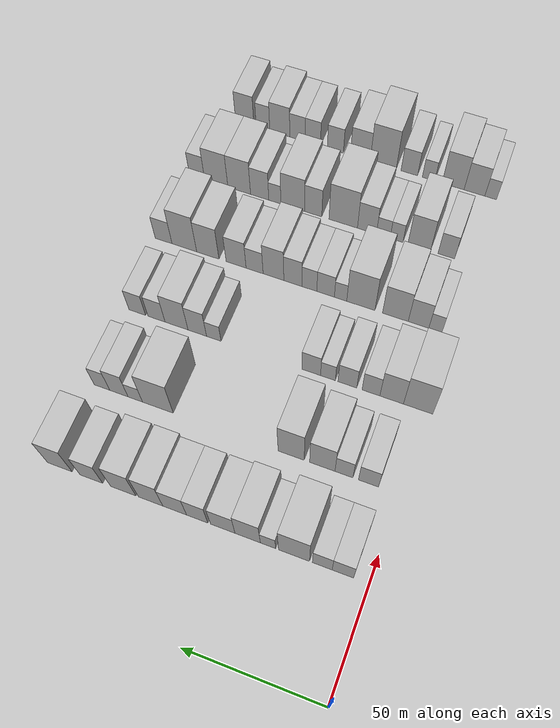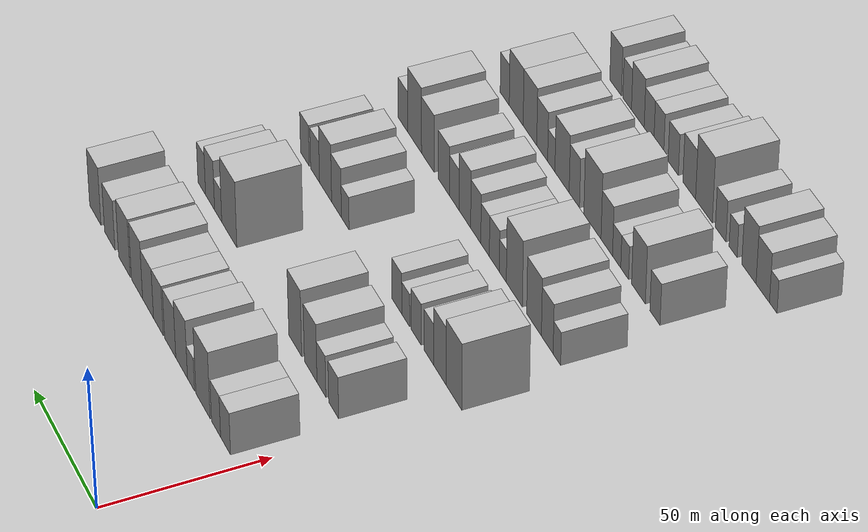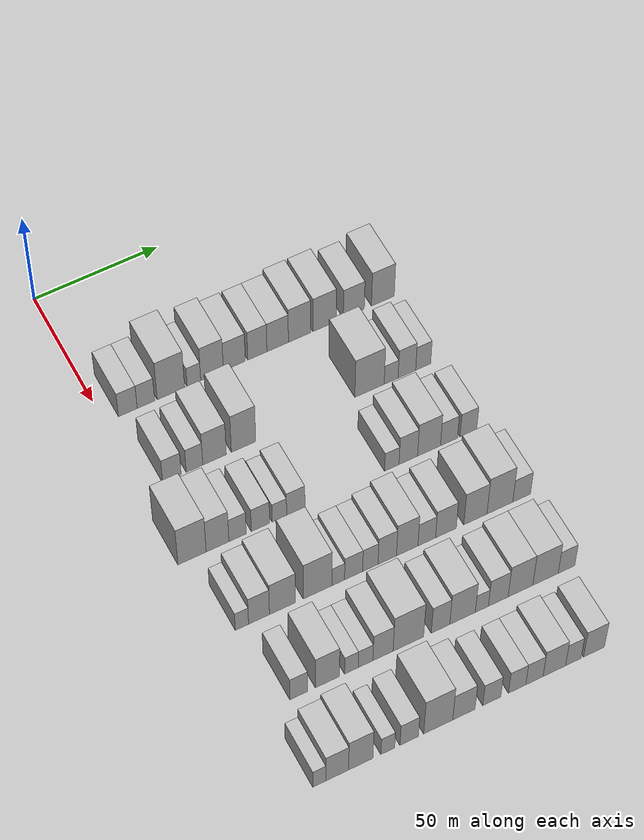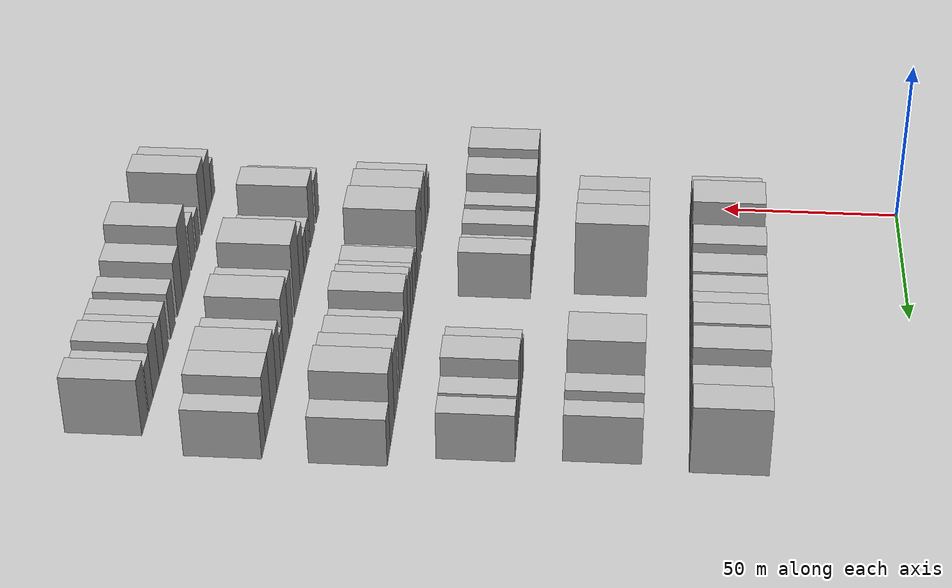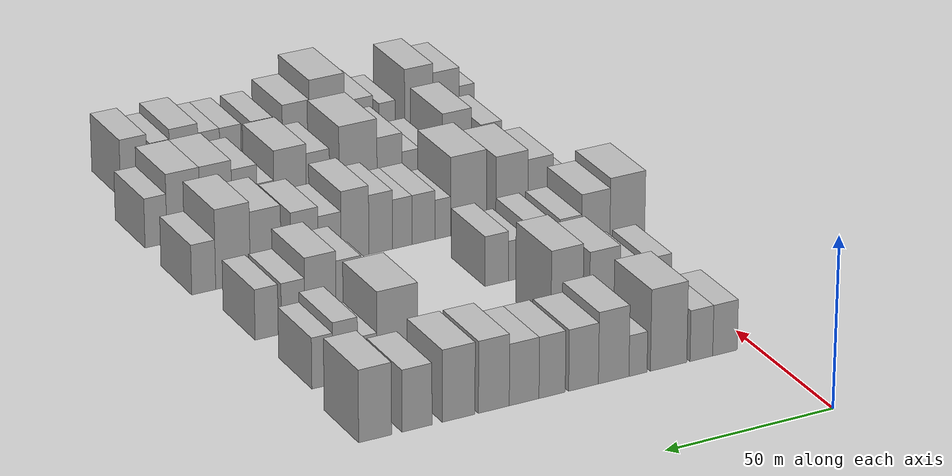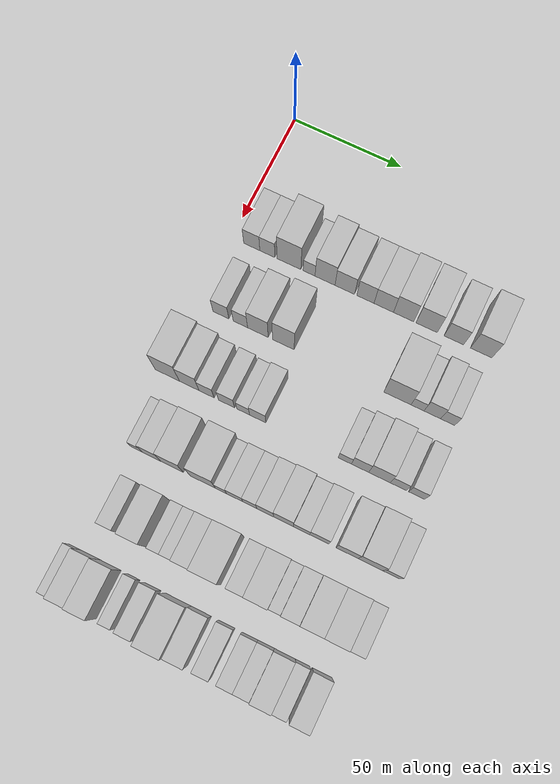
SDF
<sdf version="1.6">
 <world name="default">
  <model name="building_57">
   <static>1</static>
   <pose>50.0000 9.2083 0 0.000000 0.000000 0.000000</pose>
   <link name="link">
    <pose>0 0 7.50 0 0 0</pose>
    <collision name="collision"><geometry><box><size>20.0000 7.4848 15.0000</size></box></geometry></collision>
    <visual name="visual">
     <cast_shadows>0</cast_shadows>
     <geometry><box><size>20.0000 7.4848 15.0000</size></box></geometry>
     <material>
      <script>
       <uri>model://HANNAS_wall/materials/scripts</uri>
       <uri>model://HANNAS_wall/materials/textures</uri>
       <name>vrc/HANNAS_wall</name>
      </script>
     </material>
    </visual>
   </link>
  </model>
  <model name="building_58">
   <static>1</static>
   <pose>50.0000 16.4128 0 0.000000 0.000000 0.000000</pose>
   <link name="link">
    <pose>0 0 7.50 0 0 0</pose>
    <collision name="collision"><geometry><box><size>20.0000 6.9242 15.0000</size></box></geometry></collision>
    <visual name="visual">
     <cast_shadows>0</cast_shadows>
     <geometry><box><size>20.0000 6.9242 15.0000</size></box></geometry>
     <material>
      <script>
       <uri>model://HANNAS_wall/materials/scripts</uri>
       <uri>model://HANNAS_wall/materials/textures</uri>
       <name>vrc/HANNAS_wall</name>
      </script>
     </material>
    </visual>
   </link>
  </model>
  <model name="building_59">
   <static>1</static>
   <pose>50.0000 26.3806 0 0.000000 0.000000 0.000000</pose>
   <link name="link">
    <pose>0 0 12.00 0 0 0</pose>
    <collision name="collision"><geometry><box><size>20.0000 11.0114 24.0000</size></box></geometry></collision>
    <visual name="visual">
     <cast_shadows>0</cast_shadows>
     <geometry><box><size>20.0000 11.0114 24.0000</size></box></geometry>
     <material>
      <script>
       <uri>model://HANNAS_wall/materials/scripts</uri>
       <uri>model://HANNAS_wall/materials/textures</uri>
       <name>vrc/HANNAS_wall</name>
      </script>
     </material>
    </visual>
   </link>
  </model>
  <model name="building_60">
   <static>1</static>
   <pose>50.0000 35.6208 0 0.000000 0.000000 0.000000</pose>
   <link name="link">
    <pose>0 0 6.00 0 0 0</pose>
    <collision name="collision"><geometry><box><size>20.0000 5.4691 12.0000</size></box></geometry></collision>
    <visual name="visual">
     <cast_shadows>0</cast_shadows>
     <geometry><box><size>20.0000 5.4691 12.0000</size></box></geometry>
     <material>
      <script>
       <uri>model://HANNAS_wall/materials/scripts</uri>
       <uri>model://HANNAS_wall/materials/textures</uri>
       <name>vrc/HANNAS_wall</name>
      </script>
     </material>
    </visual>
   </link>
  </model>
  <model name="building_61">
   <static>1</static>
   <pose>50.0000 42.9283 0 0.000000 0.000000 0.000000</pose>
   <link name="link">
    <pose>0 0 10.50 0 0 0</pose>
    <collision name="collision"><geometry><box><size>20.0000 9.1458 21.0000</size></box></geometry></collision>
    <visual name="visual">
     <cast_shadows>0</cast_shadows>
     <geometry><box><size>20.0000 9.1458 21.0000</size></box></geometry>
     <material>
      <script>
       <uri>model://HANNAS_wall/materials/scripts</uri>
       <uri>model://HANNAS_wall/materials/textures</uri>
       <name>vrc/HANNAS_wall</name>
      </script>
     </material>
    </visual>
   </link>
  </model>
  <model name="building_62">
   <static>1</static>
   <pose>50.0000 51.9414 0 0.000000 0.000000 0.000000</pose>
   <link name="link">
    <pose>0 0 9.00 0 0 0</pose>
    <collision name="collision"><geometry><box><size>20.0000 8.8803 18.0000</size></box></geometry></collision>
    <visual name="visual">
     <cast_shadows>0</cast_shadows>
     <geometry><box><size>20.0000 8.8803 18.0000</size></box></geometry>
     <material>
      <script>
       <uri>model://HANNAS_wall/materials/scripts</uri>
       <uri>model://HANNAS_wall/materials/textures</uri>
       <name>vrc/HANNAS_wall</name>
      </script>
     </material>
    </visual>
   </link>
  </model>
  <model name="building_63">
   <static>1</static>
   <pose>50.0000 61.2831 0 0.000000 0.000000 0.000000</pose>
   <link name="link">
    <pose>0 0 9.00 0 0 0</pose>
    <collision name="collision"><geometry><box><size>20.0000 7.8031 18.0000</size></box></geometry></collision>
    <visual name="visual">
     <cast_shadows>0</cast_shadows>
     <geometry><box><size>20.0000 7.8031 18.0000</size></box></geometry>
     <material>
      <script>
       <uri>model://HANNAS_wall/materials/scripts</uri>
       <uri>model://HANNAS_wall/materials/textures</uri>
       <name>vrc/HANNAS_wall</name>
      </script>
     </material>
    </visual>
   </link>
  </model>
  <model name="building_64">
   <static>1</static>
   <pose>50.0000 69.5711 0 0.000000 0.000000 0.000000</pose>
   <link name="link">
    <pose>0 0 9.00 0 0 0</pose>
    <collision name="collision"><geometry><box><size>20.0000 8.7729 18.0000</size></box></geometry></collision>
    <visual name="visual">
     <cast_shadows>0</cast_shadows>
     <geometry><box><size>20.0000 8.7729 18.0000</size></box></geometry>
     <material>
      <script>
       <uri>model://HANNAS_wall/materials/scripts</uri>
       <uri>model://HANNAS_wall/materials/textures</uri>
       <name>vrc/HANNAS_wall</name>
      </script>
     </material>
    </visual>
   </link>
  </model>
  <model name="building_65">
   <static>1</static>
   <pose>50.0000 78.4867 0 0.000000 0.000000 0.000000</pose>
   <link name="link">
    <pose>0 0 10.50 0 0 0</pose>
    <collision name="collision"><geometry><box><size>20.0000 9.0582 21.0000</size></box></geometry></collision>
    <visual name="visual">
     <cast_shadows>0</cast_shadows>
     <geometry><box><size>20.0000 9.0582 21.0000</size></box></geometry>
     <material>
      <script>
       <uri>model://HANNAS_wall/materials/scripts</uri>
       <uri>model://HANNAS_wall/materials/textures</uri>
       <name>vrc/HANNAS_wall</name>
      </script>
     </material>
    </visual>
   </link>
  </model>
  <model name="building_66">
   <static>1</static>
   <pose>50.0000 88.7880 0 0.000000 0.000000 0.000000</pose>
   <link name="link">
    <pose>0 0 10.50 0 0 0</pose>
    <collision name="collision"><geometry><box><size>20.0000 9.5445 21.0000</size></box></geometry></collision>
    <visual name="visual">
     <cast_shadows>0</cast_shadows>
     <geometry><box><size>20.0000 9.5445 21.0000</size></box></geometry>
     <material>
      <script>
       <uri>model://HANNAS_wall/materials/scripts</uri>
       <uri>model://HANNAS_wall/materials/textures</uri>
       <name>vrc/HANNAS_wall</name>
      </script>
     </material>
    </visual>
   </link>
  </model>
  <model name="building_67">
   <static>1</static>
   <pose>50.0000 100.9029 0 0.000000 0.000000 0.000000</pose>
   <link name="link">
    <pose>0 0 9.00 0 0 0</pose>
    <collision name="collision"><geometry><box><size>20.0000 8.6853 18.0000</size></box></geometry></collision>
    <visual name="visual">
     <cast_shadows>0</cast_shadows>
     <geometry><box><size>20.0000 8.6853 18.0000</size></box></geometry>
     <material>
      <script>
       <uri>model://HANNAS_wall/materials/scripts</uri>
       <uri>model://HANNAS_wall/materials/textures</uri>
       <name>vrc/HANNAS_wall</name>
      </script>
     </material>
    </visual>
   </link>
  </model>
  <model name="building_68">
   <static>1</static>
   <pose>50.0000 112.9835 0 0.000000 0.000000 0.000000</pose>
   <link name="link">
    <pose>0 0 10.50 0 0 0</pose>
    <collision name="collision"><geometry><box><size>20.0000 9.4759 21.0000</size></box></geometry></collision>
    <visual name="visual">
     <cast_shadows>0</cast_shadows>
     <geometry><box><size>20.0000 9.4759 21.0000</size></box></geometry>
     <material>
      <script>
       <uri>model://HANNAS_wall/materials/scripts</uri>
       <uri>model://HANNAS_wall/materials/textures</uri>
       <name>vrc/HANNAS_wall</name>
      </script>
     </material>
    </visual>
   </link>
  </model>
  <model name="building_160">
   <static>1</static>
   <pose>82.0000 11.0810 0 0.000000 0.000000 0.000000</pose>
   <link name="link">
    <pose>0 0 7.50 0 0 0</pose>
    <collision name="collision"><geometry><box><size>20.0000 7.2846 15.0000</size></box></geometry></collision>
    <visual name="visual">
     <cast_shadows>0</cast_shadows>
     <geometry><box><size>20.0000 7.2846 15.0000</size></box></geometry>
     <material>
      <script>
       <uri>model://HANNAS_wall/materials/scripts</uri>
       <uri>model://HANNAS_wall/materials/textures</uri>
       <name>vrc/HANNAS_wall</name>
      </script>
     </material>
    </visual>
   </link>
  </model>
  <model name="building_161">
   <static>1</static>
   <pose>82.0000 19.9955 0 0.000000 0.000000 0.000000</pose>
   <link name="link">
    <pose>0 0 7.50 0 0 0</pose>
    <collision name="collision"><geometry><box><size>20.0000 6.5443 15.0000</size></box></geometry></collision>
    <visual name="visual">
     <cast_shadows>0</cast_shadows>
     <geometry><box><size>20.0000 6.5443 15.0000</size></box></geometry>
     <material>
      <script>
       <uri>model://HANNAS_wall/materials/scripts</uri>
       <uri>model://HANNAS_wall/materials/textures</uri>
       <name>vrc/HANNAS_wall</name>
      </script>
     </material>
    </visual>
   </link>
  </model>
  <model name="building_162">
   <static>1</static>
   <pose>82.0000 27.9349 0 0.000000 0.000000 0.000000</pose>
   <link name="link">
    <pose>0 0 10.50 0 0 0</pose>
    <collision name="collision"><geometry><box><size>20.0000 9.3345 21.0000</size></box></geometry></collision>
    <visual name="visual">
     <cast_shadows>0</cast_shadows>
     <geometry><box><size>20.0000 9.3345 21.0000</size></box></geometry>
     <material>
      <script>
       <uri>model://HANNAS_wall/materials/scripts</uri>
       <uri>model://HANNAS_wall/materials/textures</uri>
       <name>vrc/HANNAS_wall</name>
      </script>
     </material>
    </visual>
   </link>
  </model>
  <model name="building_163">
   <static>1</static>
   <pose>82.0000 39.4538 0 0.000000 0.000000 0.000000</pose>
   <link name="link">
    <pose>0 0 12.00 0 0 0</pose>
    <collision name="collision"><geometry><box><size>20.0000 9.7034 24.0000</size></box></geometry></collision>
    <visual name="visual">
     <cast_shadows>0</cast_shadows>
     <geometry><box><size>20.0000 9.7034 24.0000</size></box></geometry>
     <material>
      <script>
       <uri>model://HANNAS_wall/materials/scripts</uri>
       <uri>model://HANNAS_wall/materials/textures</uri>
       <name>vrc/HANNAS_wall</name>
      </script>
     </material>
    </visual>
   </link>
  </model>
  <model name="building_164">
   <static>1</static>
   <pose>82.0000 90.2785 0 0.000000 0.000000 0.000000</pose>
   <link name="link">
    <pose>0 0 12.00 0 0 0</pose>
    <collision name="collision"><geometry><box><size>20.0000 11.9820 24.0000</size></box></geometry></collision>
    <visual name="visual">
     <cast_shadows>0</cast_shadows>
     <geometry><box><size>20.0000 11.9820 24.0000</size></box></geometry>
     <material>
      <script>
       <uri>model://HANNAS_wall/materials/scripts</uri>
       <uri>model://HANNAS_wall/materials/textures</uri>
       <name>vrc/HANNAS_wall</name>
      </script>
     </material>
    </visual>
   </link>
  </model>
  <model name="building_165">
   <static>1</static>
   <pose>82.0000 99.1228 0 0.000000 0.000000 0.000000</pose>
   <link name="link">
    <pose>0 0 6.00 0 0 0</pose>
    <collision name="collision"><geometry><box><size>20.0000 5.7067 12.0000</size></box></geometry></collision>
    <visual name="visual">
     <cast_shadows>0</cast_shadows>
     <geometry><box><size>20.0000 5.7067 12.0000</size></box></geometry>
     <material>
      <script>
       <uri>model://HANNAS_wall/materials/scripts</uri>
       <uri>model://HANNAS_wall/materials/textures</uri>
       <name>vrc/HANNAS_wall</name>
      </script>
     </material>
    </visual>
   </link>
  </model>
  <model name="building_166">
   <static>1</static>
   <pose>82.0000 105.6028 0 0.000000 0.000000 0.000000</pose>
   <link name="link">
    <pose>0 0 9.00 0 0 0</pose>
    <collision name="collision"><geometry><box><size>20.0000 7.2533 18.0000</size></box></geometry></collision>
    <visual name="visual">
     <cast_shadows>0</cast_shadows>
     <geometry><box><size>20.0000 7.2533 18.0000</size></box></geometry>
     <material>
      <script>
       <uri>model://HANNAS_wall/materials/scripts</uri>
       <uri>model://HANNAS_wall/materials/textures</uri>
       <name>vrc/HANNAS_wall</name>
      </script>
     </material>
    </visual>
   </link>
  </model>
  <model name="building_167">
   <static>1</static>
   <pose>82.0000 112.3086 0 0.000000 0.000000 0.000000</pose>
   <link name="link">
    <pose>0 0 7.50 0 0 0</pose>
    <collision name="collision"><geometry><box><size>20.0000 6.1583 15.0000</size></box></geometry></collision>
    <visual name="visual">
     <cast_shadows>0</cast_shadows>
     <geometry><box><size>20.0000 6.1583 15.0000</size></box></geometry>
     <material>
      <script>
       <uri>model://HANNAS_wall/materials/scripts</uri>
       <uri>model://HANNAS_wall/materials/textures</uri>
       <name>vrc/HANNAS_wall</name>
      </script>
     </material>
    </visual>
   </link>
  </model>
  <model name="building_277">
   <static>1</static>
   <pose>114.0000 3.1664 0 0.000000 0.000000 0.000000</pose>
   <link name="link">
    <pose>0 0 12.00 0 0 0</pose>
    <collision name="collision"><geometry><box><size>20.0000 10.9654 24.0000</size></box></geometry></collision>
    <visual name="visual">
     <cast_shadows>0</cast_shadows>
     <geometry><box><size>20.0000 10.9654 24.0000</size></box></geometry>
     <material>
      <script>
       <uri>model://HANNAS_wall/materials/scripts</uri>
       <uri>model://HANNAS_wall/materials/textures</uri>
       <name>vrc/HANNAS_wall</name>
      </script>
     </material>
    </visual>
   </link>
  </model>
  <model name="building_278">
   <static>1</static>
   <pose>114.0000 13.0855 0 0.000000 0.000000 0.000000</pose>
   <link name="link">
    <pose>0 0 10.50 0 0 0</pose>
    <collision name="collision"><geometry><box><size>20.0000 8.8729 21.0000</size></box></geometry></collision>
    <visual name="visual">
     <cast_shadows>0</cast_shadows>
     <geometry><box><size>20.0000 8.8729 21.0000</size></box></geometry>
     <material>
      <script>
       <uri>model://HANNAS_wall/materials/scripts</uri>
       <uri>model://HANNAS_wall/materials/textures</uri>
       <name>vrc/HANNAS_wall</name>
      </script>
     </material>
    </visual>
   </link>
  </model>
  <model name="building_279">
   <static>1</static>
   <pose>114.0000 20.8991 0 0.000000 0.000000 0.000000</pose>
   <link name="link">
    <pose>0 0 7.50 0 0 0</pose>
    <collision name="collision"><geometry><box><size>20.0000 6.7544 15.0000</size></box></geometry></collision>
    <visual name="visual">
     <cast_shadows>0</cast_shadows>
     <geometry><box><size>20.0000 6.7544 15.0000</size></box></geometry>
     <material>
      <script>
       <uri>model://HANNAS_wall/materials/scripts</uri>
       <uri>model://HANNAS_wall/materials/textures</uri>
       <name>vrc/HANNAS_wall</name>
      </script>
     </material>
    </visual>
   </link>
  </model>
  <model name="building_280">
   <static>1</static>
   <pose>114.0000 29.8711 0 0.000000 0.000000 0.000000</pose>
   <link name="link">
    <pose>0 0 7.50 0 0 0</pose>
    <collision name="collision"><geometry><box><size>20.0000 7.1896 15.0000</size></box></geometry></collision>
    <visual name="visual">
     <cast_shadows>0</cast_shadows>
     <geometry><box><size>20.0000 7.1896 15.0000</size></box></geometry>
     <material>
      <script>
       <uri>model://HANNAS_wall/materials/scripts</uri>
       <uri>model://HANNAS_wall/materials/textures</uri>
       <name>vrc/HANNAS_wall</name>
      </script>
     </material>
    </visual>
   </link>
  </model>
  <model name="building_281">
   <static>1</static>
   <pose>114.0000 37.3006 0 0.000000 0.000000 0.000000</pose>
   <link name="link">
    <pose>0 0 6.00 0 0 0</pose>
    <collision name="collision"><geometry><box><size>20.0000 5.6692 12.0000</size></box></geometry></collision>
    <visual name="visual">
     <cast_shadows>0</cast_shadows>
     <geometry><box><size>20.0000 5.6692 12.0000</size></box></geometry>
     <material>
      <script>
       <uri>model://HANNAS_wall/materials/scripts</uri>
       <uri>model://HANNAS_wall/materials/textures</uri>
       <name>vrc/HANNAS_wall</name>
      </script>
     </material>
    </visual>
   </link>
  </model>
  <model name="building_282">
   <static>1</static>
   <pose>114.0000 43.7442 0 0.000000 0.000000 0.000000</pose>
   <link name="link">
    <pose>0 0 7.50 0 0 0</pose>
    <collision name="collision"><geometry><box><size>20.0000 7.2180 15.0000</size></box></geometry></collision>
    <visual name="visual">
     <cast_shadows>0</cast_shadows>
     <geometry><box><size>20.0000 7.2180 15.0000</size></box></geometry>
     <material>
      <script>
       <uri>model://HANNAS_wall/materials/scripts</uri>
       <uri>model://HANNAS_wall/materials/textures</uri>
       <name>vrc/HANNAS_wall</name>
      </script>
     </material>
    </visual>
   </link>
  </model>
  <model name="building_283">
   <static>1</static>
   <pose>114.0000 82.0651 0 0.000000 0.000000 0.000000</pose>
   <link name="link">
    <pose>0 0 6.00 0 0 0</pose>
    <collision name="collision"><geometry><box><size>20.0000 5.8079 12.0000</size></box></geometry></collision>
    <visual name="visual">
     <cast_shadows>0</cast_shadows>
     <geometry><box><size>20.0000 5.8079 12.0000</size></box></geometry>
     <material>
      <script>
       <uri>model://HANNAS_wall/materials/scripts</uri>
       <uri>model://HANNAS_wall/materials/textures</uri>
       <name>vrc/HANNAS_wall</name>
      </script>
     </material>
    </visual>
   </link>
  </model>
  <model name="building_284">
   <static>1</static>
   <pose>114.0000 88.7136 0 0.000000 0.000000 0.000000</pose>
   <link name="link">
    <pose>0 0 9.00 0 0 0</pose>
    <collision name="collision"><geometry><box><size>20.0000 7.4890 18.0000</size></box></geometry></collision>
    <visual name="visual">
     <cast_shadows>0</cast_shadows>
     <geometry><box><size>20.0000 7.4890 18.0000</size></box></geometry>
     <material>
      <script>
       <uri>model://HANNAS_wall/materials/scripts</uri>
       <uri>model://HANNAS_wall/materials/textures</uri>
       <name>vrc/HANNAS_wall</name>
      </script>
     </material>
    </visual>
   </link>
  </model>
  <model name="building_285">
   <static>1</static>
   <pose>114.0000 97.1096 0 0.000000 0.000000 0.000000</pose>
   <link name="link">
    <pose>0 0 10.50 0 0 0</pose>
    <collision name="collision"><geometry><box><size>20.0000 9.3031 21.0000</size></box></geometry></collision>
    <visual name="visual">
     <cast_shadows>0</cast_shadows>
     <geometry><box><size>20.0000 9.3031 21.0000</size></box></geometry>
     <material>
      <script>
       <uri>model://HANNAS_wall/materials/scripts</uri>
       <uri>model://HANNAS_wall/materials/textures</uri>
       <name>vrc/HANNAS_wall</name>
      </script>
     </material>
    </visual>
   </link>
  </model>
  <model name="building_286">
   <static>1</static>
   <pose>114.0000 105.2376 0 0.000000 0.000000 0.000000</pose>
   <link name="link">
    <pose>0 0 7.50 0 0 0</pose>
    <collision name="collision"><geometry><box><size>20.0000 6.9529 15.0000</size></box></geometry></collision>
    <visual name="visual">
     <cast_shadows>0</cast_shadows>
     <geometry><box><size>20.0000 6.9529 15.0000</size></box></geometry>
     <material>
      <script>
       <uri>model://HANNAS_wall/materials/scripts</uri>
       <uri>model://HANNAS_wall/materials/textures</uri>
       <name>vrc/HANNAS_wall</name>
      </script>
     </material>
    </visual>
   </link>
  </model>
  <model name="building_287">
   <static>1</static>
   <pose>114.0000 113.1294 0 0.000000 0.000000 0.000000</pose>
   <link name="link">
    <pose>0 0 7.50 0 0 0</pose>
    <collision name="collision"><geometry><box><size>20.0000 6.8306 15.0000</size></box></geometry></collision>
    <visual name="visual">
     <cast_shadows>0</cast_shadows>
     <geometry><box><size>20.0000 6.8306 15.0000</size></box></geometry>
     <material>
      <script>
       <uri>model://HANNAS_wall/materials/scripts</uri>
       <uri>model://HANNAS_wall/materials/textures</uri>
       <name>vrc/HANNAS_wall</name>
      </script>
     </material>
    </visual>
   </link>
  </model>
  <model name="building_398">
   <static>1</static>
   <pose>146.0000 6.3872 0 0.000000 0.000000 0.000000</pose>
   <link name="link">
    <pose>0 0 6.00 0 0 0</pose>
    <collision name="collision"><geometry><box><size>20.0000 5.1092 12.0000</size></box></geometry></collision>
    <visual name="visual">
     <cast_shadows>0</cast_shadows>
     <geometry><box><size>20.0000 5.1092 12.0000</size></box></geometry>
     <material>
      <script>
       <uri>model://HANNAS_wall/materials/scripts</uri>
       <uri>model://HANNAS_wall/materials/textures</uri>
       <name>vrc/HANNAS_wall</name>
      </script>
     </material>
    </visual>
   </link>
  </model>
  <model name="building_399">
   <static>1</static>
   <pose>146.0000 12.9421 0 0.000000 0.000000 0.000000</pose>
   <link name="link">
    <pose>0 0 9.00 0 0 0</pose>
    <collision name="collision"><geometry><box><size>20.0000 8.0006 18.0000</size></box></geometry></collision>
    <visual name="visual">
     <cast_shadows>0</cast_shadows>
     <geometry><box><size>20.0000 8.0006 18.0000</size></box></geometry>
     <material>
      <script>
       <uri>model://HANNAS_wall/materials/scripts</uri>
       <uri>model://HANNAS_wall/materials/textures</uri>
       <name>vrc/HANNAS_wall</name>
      </script>
     </material>
    </visual>
   </link>
  </model>
  <model name="building_400">
   <static>1</static>
   <pose>146.0000 21.9885 0 0.000000 0.000000 0.000000</pose>
   <link name="link">
    <pose>0 0 10.50 0 0 0</pose>
    <collision name="collision"><geometry><box><size>20.0000 10.0922 21.0000</size></box></geometry></collision>
    <visual name="visual">
     <cast_shadows>0</cast_shadows>
     <geometry><box><size>20.0000 10.0922 21.0000</size></box></geometry>
     <material>
      <script>
       <uri>model://HANNAS_wall/materials/scripts</uri>
       <uri>model://HANNAS_wall/materials/textures</uri>
       <name>vrc/HANNAS_wall</name>
      </script>
     </material>
    </visual>
   </link>
  </model>
  <model name="building_401">
   <static>1</static>
   <pose>146.0000 35.6291 0 0.000000 0.000000 0.000000</pose>
   <link name="link">
    <pose>0 0 12.00 0 0 0</pose>
    <collision name="collision"><geometry><box><size>20.0000 11.1890 24.0000</size></box></geometry></collision>
    <visual name="visual">
     <cast_shadows>0</cast_shadows>
     <geometry><box><size>20.0000 11.1890 24.0000</size></box></geometry>
     <material>
      <script>
       <uri>model://HANNAS_wall/materials/scripts</uri>
       <uri>model://HANNAS_wall/materials/textures</uri>
       <name>vrc/HANNAS_wall</name>
      </script>
     </material>
    </visual>
   </link>
  </model>
  <model name="building_402">
   <static>1</static>
   <pose>146.0000 43.6874 0 0.000000 0.000000 0.000000</pose>
   <link name="link">
    <pose>0 0 6.00 0 0 0</pose>
    <collision name="collision"><geometry><box><size>20.0000 4.9275 12.0000</size></box></geometry></collision>
    <visual name="visual">
     <cast_shadows>0</cast_shadows>
     <geometry><box><size>20.0000 4.9275 12.0000</size></box></geometry>
     <material>
      <script>
       <uri>model://HANNAS_wall/materials/scripts</uri>
       <uri>model://HANNAS_wall/materials/textures</uri>
       <name>vrc/HANNAS_wall</name>
      </script>
     </material>
    </visual>
   </link>
  </model>
  <model name="building_403">
   <static>1</static>
   <pose>146.0000 49.6857 0 0.000000 0.000000 0.000000</pose>
   <link name="link">
    <pose>0 0 7.50 0 0 0</pose>
    <collision name="collision"><geometry><box><size>20.0000 7.0691 15.0000</size></box></geometry></collision>
    <visual name="visual">
     <cast_shadows>0</cast_shadows>
     <geometry><box><size>20.0000 7.0691 15.0000</size></box></geometry>
     <material>
      <script>
       <uri>model://HANNAS_wall/materials/scripts</uri>
       <uri>model://HANNAS_wall/materials/textures</uri>
       <name>vrc/HANNAS_wall</name>
      </script>
     </material>
    </visual>
   </link>
  </model>
  <model name="building_404">
   <static>1</static>
   <pose>146.0000 56.2538 0 0.000000 0.000000 0.000000</pose>
   <link name="link">
    <pose>0 0 7.50 0 0 0</pose>
    <collision name="collision"><geometry><box><size>20.0000 6.0670 15.0000</size></box></geometry></collision>
    <visual name="visual">
     <cast_shadows>0</cast_shadows>
     <geometry><box><size>20.0000 6.0670 15.0000</size></box></geometry>
     <material>
      <script>
       <uri>model://HANNAS_wall/materials/scripts</uri>
       <uri>model://HANNAS_wall/materials/textures</uri>
       <name>vrc/HANNAS_wall</name>
      </script>
     </material>
    </visual>
   </link>
  </model>
  <model name="building_405">
   <static>1</static>
   <pose>146.0000 62.9308 0 0.000000 0.000000 0.000000</pose>
   <link name="link">
    <pose>0 0 9.00 0 0 0</pose>
    <collision name="collision"><geometry><box><size>20.0000 7.2870 18.0000</size></box></geometry></collision>
    <visual name="visual">
     <cast_shadows>0</cast_shadows>
     <geometry><box><size>20.0000 7.2870 18.0000</size></box></geometry>
     <material>
      <script>
       <uri>model://HANNAS_wall/materials/scripts</uri>
       <uri>model://HANNAS_wall/materials/textures</uri>
       <name>vrc/HANNAS_wall</name>
      </script>
     </material>
    </visual>
   </link>
  </model>
  <model name="building_406">
   <static>1</static>
   <pose>146.0000 70.8221 0 0.000000 0.000000 0.000000</pose>
   <link name="link">
    <pose>0 0 10.50 0 0 0</pose>
    <collision name="collision"><geometry><box><size>20.0000 8.4955 21.0000</size></box></geometry></collision>
    <visual name="visual">
     <cast_shadows>0</cast_shadows>
     <geometry><box><size>20.0000 8.4955 21.0000</size></box></geometry>
     <material>
      <script>
       <uri>model://HANNAS_wall/materials/scripts</uri>
       <uri>model://HANNAS_wall/materials/textures</uri>
       <name>vrc/HANNAS_wall</name>
      </script>
     </material>
    </visual>
   </link>
  </model>
  <model name="building_407">
   <static>1</static>
   <pose>146.0000 78.5710 0 0.000000 0.000000 0.000000</pose>
   <link name="link">
    <pose>0 0 7.50 0 0 0</pose>
    <collision name="collision"><geometry><box><size>20.0000 7.0023 15.0000</size></box></geometry></collision>
    <visual name="visual">
     <cast_shadows>0</cast_shadows>
     <geometry><box><size>20.0000 7.0023 15.0000</size></box></geometry>
     <material>
      <script>
       <uri>model://HANNAS_wall/materials/scripts</uri>
       <uri>model://HANNAS_wall/materials/textures</uri>
       <name>vrc/HANNAS_wall</name>
      </script>
     </material>
    </visual>
   </link>
  </model>
  <model name="building_408">
   <static>1</static>
   <pose>146.0000 86.2087 0 0.000000 0.000000 0.000000</pose>
   <link name="link">
    <pose>0 0 9.00 0 0 0</pose>
    <collision name="collision"><geometry><box><size>20.0000 8.2731 18.0000</size></box></geometry></collision>
    <visual name="visual">
     <cast_shadows>0</cast_shadows>
     <geometry><box><size>20.0000 8.2731 18.0000</size></box></geometry>
     <material>
      <script>
       <uri>model://HANNAS_wall/materials/scripts</uri>
       <uri>model://HANNAS_wall/materials/textures</uri>
       <name>vrc/HANNAS_wall</name>
      </script>
     </material>
    </visual>
   </link>
  </model>
  <model name="building_409">
   <static>1</static>
   <pose>146.0000 98.0142 0 0.000000 0.000000 0.000000</pose>
   <link name="link">
    <pose>0 0 10.50 0 0 0</pose>
    <collision name="collision"><geometry><box><size>20.0000 9.3378 21.0000</size></box></geometry></collision>
    <visual name="visual">
     <cast_shadows>0</cast_shadows>
     <geometry><box><size>20.0000 9.3378 21.0000</size></box></geometry>
     <material>
      <script>
       <uri>model://HANNAS_wall/materials/scripts</uri>
       <uri>model://HANNAS_wall/materials/textures</uri>
       <name>vrc/HANNAS_wall</name>
      </script>
     </material>
    </visual>
   </link>
  </model>
  <model name="building_410">
   <static>1</static>
   <pose>146.0000 107.8942 0 0.000000 0.000000 0.000000</pose>
   <link name="link">
    <pose>0 0 12.00 0 0 0</pose>
    <collision name="collision"><geometry><box><size>20.0000 10.4223 24.0000</size></box></geometry></collision>
    <visual name="visual">
     <cast_shadows>0</cast_shadows>
     <geometry><box><size>20.0000 10.4223 24.0000</size></box></geometry>
     <material>
      <script>
       <uri>model://HANNAS_wall/materials/scripts</uri>
       <uri>model://HANNAS_wall/materials/textures</uri>
       <name>vrc/HANNAS_wall</name>
      </script>
     </material>
    </visual>
   </link>
  </model>
  <model name="building_411">
   <static>1</static>
   <pose>146.0000 116.6894 0 0.000000 0.000000 0.000000</pose>
   <link name="link">
    <pose>0 0 7.50 0 0 0</pose>
    <collision name="collision"><geometry><box><size>20.0000 7.1681 15.0000</size></box></geometry></collision>
    <visual name="visual">
     <cast_shadows>0</cast_shadows>
     <geometry><box><size>20.0000 7.1681 15.0000</size></box></geometry>
     <material>
      <script>
       <uri>model://HANNAS_wall/materials/scripts</uri>
       <uri>model://HANNAS_wall/materials/textures</uri>
       <name>vrc/HANNAS_wall</name>
      </script>
     </material>
    </visual>
   </link>
  </model>
  <model name="building_526">
   <static>1</static>
   <pose>178.0000 11.6467 0 0.000000 0.000000 0.000000</pose>
   <link name="link">
    <pose>0 0 7.50 0 0 0</pose>
    <collision name="collision"><geometry><box><size>20.0000 6.6956 15.0000</size></box></geometry></collision>
    <visual name="visual">
     <cast_shadows>0</cast_shadows>
     <geometry><box><size>20.0000 6.6956 15.0000</size></box></geometry>
     <material>
      <script>
       <uri>model://HANNAS_wall/materials/scripts</uri>
       <uri>model://HANNAS_wall/materials/textures</uri>
       <name>vrc/HANNAS_wall</name>
      </script>
     </material>
    </visual>
   </link>
  </model>
  <model name="building_527">
   <static>1</static>
   <pose>178.0000 22.5934 0 0.000000 0.000000 0.000000</pose>
   <link name="link">
    <pose>0 0 10.50 0 0 0</pose>
    <collision name="collision"><geometry><box><size>20.0000 9.1979 21.0000</size></box></geometry></collision>
    <visual name="visual">
     <cast_shadows>0</cast_shadows>
     <geometry><box><size>20.0000 9.1979 21.0000</size></box></geometry>
     <material>
      <script>
       <uri>model://HANNAS_wall/materials/scripts</uri>
       <uri>model://HANNAS_wall/materials/textures</uri>
       <name>vrc/HANNAS_wall</name>
      </script>
     </material>
    </visual>
   </link>
  </model>
  <model name="building_528">
   <static>1</static>
   <pose>178.0000 31.8257 0 0.000000 0.000000 0.000000</pose>
   <link name="link">
    <pose>0 0 6.00 0 0 0</pose>
    <collision name="collision"><geometry><box><size>20.0000 5.2667 12.0000</size></box></geometry></collision>
    <visual name="visual">
     <cast_shadows>0</cast_shadows>
     <geometry><box><size>20.0000 5.2667 12.0000</size></box></geometry>
     <material>
      <script>
       <uri>model://HANNAS_wall/materials/scripts</uri>
       <uri>model://HANNAS_wall/materials/textures</uri>
       <name>vrc/HANNAS_wall</name>
      </script>
     </material>
    </visual>
   </link>
  </model>
  <model name="building_529">
   <static>1</static>
   <pose>178.0000 37.2632 0 0.000000 0.000000 0.000000</pose>
   <link name="link">
    <pose>0 0 6.00 0 0 0</pose>
    <collision name="collision"><geometry><box><size>20.0000 5.6083 12.0000</size></box></geometry></collision>
    <visual name="visual">
     <cast_shadows>0</cast_shadows>
     <geometry><box><size>20.0000 5.6083 12.0000</size></box></geometry>
     <material>
      <script>
       <uri>model://HANNAS_wall/materials/scripts</uri>
       <uri>model://HANNAS_wall/materials/textures</uri>
       <name>vrc/HANNAS_wall</name>
      </script>
     </material>
    </visual>
   </link>
  </model>
  <model name="building_530">
   <static>1</static>
   <pose>178.0000 43.9824 0 0.000000 0.000000 0.000000</pose>
   <link name="link">
    <pose>0 0 9.00 0 0 0</pose>
    <collision name="collision"><geometry><box><size>20.0000 7.8303 18.0000</size></box></geometry></collision>
    <visual name="visual">
     <cast_shadows>0</cast_shadows>
     <geometry><box><size>20.0000 7.8303 18.0000</size></box></geometry>
     <material>
      <script>
       <uri>model://HANNAS_wall/materials/scripts</uri>
       <uri>model://HANNAS_wall/materials/textures</uri>
       <name>vrc/HANNAS_wall</name>
      </script>
     </material>
    </visual>
   </link>
  </model>
  <model name="building_531">
   <static>1</static>
   <pose>178.0000 53.8326 0 0.000000 0.000000 0.000000</pose>
   <link name="link">
    <pose>0 0 12.00 0 0 0</pose>
    <collision name="collision"><geometry><box><size>20.0000 11.8701 24.0000</size></box></geometry></collision>
    <visual name="visual">
     <cast_shadows>0</cast_shadows>
     <geometry><box><size>20.0000 11.8701 24.0000</size></box></geometry>
     <material>
      <script>
       <uri>model://HANNAS_wall/materials/scripts</uri>
       <uri>model://HANNAS_wall/materials/textures</uri>
       <name>vrc/HANNAS_wall</name>
      </script>
     </material>
    </visual>
   </link>
  </model>
  <model name="building_532">
   <static>1</static>
   <pose>178.0000 66.3855 0 0.000000 0.000000 0.000000</pose>
   <link name="link">
    <pose>0 0 9.00 0 0 0</pose>
    <collision name="collision"><geometry><box><size>20.0000 7.2358 18.0000</size></box></geometry></collision>
    <visual name="visual">
     <cast_shadows>0</cast_shadows>
     <geometry><box><size>20.0000 7.2358 18.0000</size></box></geometry>
     <material>
      <script>
       <uri>model://HANNAS_wall/materials/scripts</uri>
       <uri>model://HANNAS_wall/materials/textures</uri>
       <name>vrc/HANNAS_wall</name>
      </script>
     </material>
    </visual>
   </link>
  </model>
  <model name="building_533">
   <static>1</static>
   <pose>178.0000 75.0236 0 0.000000 0.000000 0.000000</pose>
   <link name="link">
    <pose>0 0 10.50 0 0 0</pose>
    <collision name="collision"><geometry><box><size>20.0000 10.0404 21.0000</size></box></geometry></collision>
    <visual name="visual">
     <cast_shadows>0</cast_shadows>
     <geometry><box><size>20.0000 10.0404 21.0000</size></box></geometry>
     <material>
      <script>
       <uri>model://HANNAS_wall/materials/scripts</uri>
       <uri>model://HANNAS_wall/materials/textures</uri>
       <name>vrc/HANNAS_wall</name>
      </script>
     </material>
    </visual>
   </link>
  </model>
  <model name="building_534">
   <static>1</static>
   <pose>178.0000 82.6273 0 0.000000 0.000000 0.000000</pose>
   <link name="link">
    <pose>0 0 6.00 0 0 0</pose>
    <collision name="collision"><geometry><box><size>20.0000 5.1669 12.0000</size></box></geometry></collision>
    <visual name="visual">
     <cast_shadows>0</cast_shadows>
     <geometry><box><size>20.0000 5.1669 12.0000</size></box></geometry>
     <material>
      <script>
       <uri>model://HANNAS_wall/materials/scripts</uri>
       <uri>model://HANNAS_wall/materials/textures</uri>
       <name>vrc/HANNAS_wall</name>
      </script>
     </material>
    </visual>
   </link>
  </model>
  <model name="building_535">
   <static>1</static>
   <pose>178.0000 89.1098 0 0.000000 0.000000 0.000000</pose>
   <link name="link">
    <pose>0 0 9.00 0 0 0</pose>
    <collision name="collision"><geometry><box><size>20.0000 7.7983 18.0000</size></box></geometry></collision>
    <visual name="visual">
     <cast_shadows>0</cast_shadows>
     <geometry><box><size>20.0000 7.7983 18.0000</size></box></geometry>
     <material>
      <script>
       <uri>model://HANNAS_wall/materials/scripts</uri>
       <uri>model://HANNAS_wall/materials/textures</uri>
       <name>vrc/HANNAS_wall</name>
      </script>
     </material>
    </visual>
   </link>
  </model>
  <model name="building_536">
   <static>1</static>
   <pose>178.0000 97.9074 0 0.000000 0.000000 0.000000</pose>
   <link name="link">
    <pose>0 0 10.50 0 0 0</pose>
    <collision name="collision"><geometry><box><size>20.0000 9.7968 21.0000</size></box></geometry></collision>
    <visual name="visual">
     <cast_shadows>0</cast_shadows>
     <geometry><box><size>20.0000 9.7968 21.0000</size></box></geometry>
     <material>
      <script>
       <uri>model://HANNAS_wall/materials/scripts</uri>
       <uri>model://HANNAS_wall/materials/textures</uri>
       <name>vrc/HANNAS_wall</name>
      </script>
     </material>
    </visual>
   </link>
  </model>
  <model name="building_537">
   <static>1</static>
   <pose>178.0000 107.8703 0 0.000000 0.000000 0.000000</pose>
   <link name="link">
    <pose>0 0 10.50 0 0 0</pose>
    <collision name="collision"><geometry><box><size>20.0000 10.1290 21.0000</size></box></geometry></collision>
    <visual name="visual">
     <cast_shadows>0</cast_shadows>
     <geometry><box><size>20.0000 10.1290 21.0000</size></box></geometry>
     <material>
      <script>
       <uri>model://HANNAS_wall/materials/scripts</uri>
       <uri>model://HANNAS_wall/materials/textures</uri>
       <name>vrc/HANNAS_wall</name>
      </script>
     </material>
    </visual>
   </link>
  </model>
  <model name="building_538">
   <static>1</static>
   <pose>178.0000 116.2577 0 0.000000 0.000000 0.000000</pose>
   <link name="link">
    <pose>0 0 7.50 0 0 0</pose>
    <collision name="collision"><geometry><box><size>20.0000 6.6459 15.0000</size></box></geometry></collision>
    <visual name="visual">
     <cast_shadows>0</cast_shadows>
     <geometry><box><size>20.0000 6.6459 15.0000</size></box></geometry>
     <material>
      <script>
       <uri>model://HANNAS_wall/materials/scripts</uri>
       <uri>model://HANNAS_wall/materials/textures</uri>
       <name>vrc/HANNAS_wall</name>
      </script>
     </material>
    </visual>
   </link>
  </model>
  <model name="building_645">
   <static>1</static>
   <pose>210.0000 2.7098 0 0.000000 0.000000 0.000000</pose>
   <link name="link">
    <pose>0 0 6.00 0 0 0</pose>
    <collision name="collision"><geometry><box><size>20.0000 4.8351 12.0000</size></box></geometry></collision>
    <visual name="visual">
     <cast_shadows>0</cast_shadows>
     <geometry><box><size>20.0000 4.8351 12.0000</size></box></geometry>
     <material>
      <script>
       <uri>model://HANNAS_wall/materials/scripts</uri>
       <uri>model://HANNAS_wall/materials/textures</uri>
       <name>vrc/HANNAS_wall</name>
      </script>
     </material>
    </visual>
   </link>
  </model>
  <model name="building_646">
   <static>1</static>
   <pose>210.0000 9.4089 0 0.000000 0.000000 0.000000</pose>
   <link name="link">
    <pose>0 0 9.00 0 0 0</pose>
    <collision name="collision"><geometry><box><size>20.0000 8.5632 18.0000</size></box></geometry></collision>
    <visual name="visual">
     <cast_shadows>0</cast_shadows>
     <geometry><box><size>20.0000 8.5632 18.0000</size></box></geometry>
     <material>
      <script>
       <uri>model://HANNAS_wall/materials/scripts</uri>
       <uri>model://HANNAS_wall/materials/textures</uri>
       <name>vrc/HANNAS_wall</name>
      </script>
     </material>
    </visual>
   </link>
  </model>
  <model name="building_647">
   <static>1</static>
   <pose>210.0000 18.3019 0 0.000000 0.000000 0.000000</pose>
   <link name="link">
    <pose>0 0 10.50 0 0 0</pose>
    <collision name="collision"><geometry><box><size>20.0000 9.2228 21.0000</size></box></geometry></collision>
    <visual name="visual">
     <cast_shadows>0</cast_shadows>
     <geometry><box><size>20.0000 9.2228 21.0000</size></box></geometry>
     <material>
      <script>
       <uri>model://HANNAS_wall/materials/scripts</uri>
       <uri>model://HANNAS_wall/materials/textures</uri>
       <name>vrc/HANNAS_wall</name>
      </script>
     </material>
    </visual>
   </link>
  </model>
  <model name="building_648">
   <static>1</static>
   <pose>210.0000 28.5500 0 0.000000 0.000000 0.000000</pose>
   <link name="link">
    <pose>0 0 6.00 0 0 0</pose>
    <collision name="collision"><geometry><box><size>20.0000 5.2734 12.0000</size></box></geometry></collision>
    <visual name="visual">
     <cast_shadows>0</cast_shadows>
     <geometry><box><size>20.0000 5.2734 12.0000</size></box></geometry>
     <material>
      <script>
       <uri>model://HANNAS_wall/materials/scripts</uri>
       <uri>model://HANNAS_wall/materials/textures</uri>
       <name>vrc/HANNAS_wall</name>
      </script>
     </material>
    </visual>
   </link>
  </model>
  <model name="building_649">
   <static>1</static>
   <pose>210.0000 36.6963 0 0.000000 0.000000 0.000000</pose>
   <link name="link">
    <pose>0 0 7.50 0 0 0</pose>
    <collision name="collision"><geometry><box><size>20.0000 7.0192 15.0000</size></box></geometry></collision>
    <visual name="visual">
     <cast_shadows>0</cast_shadows>
     <geometry><box><size>20.0000 7.0192 15.0000</size></box></geometry>
     <material>
      <script>
       <uri>model://HANNAS_wall/materials/scripts</uri>
       <uri>model://HANNAS_wall/materials/textures</uri>
       <name>vrc/HANNAS_wall</name>
      </script>
     </material>
    </visual>
   </link>
  </model>
  <model name="building_650">
   <static>1</static>
   <pose>210.0000 47.7846 0 0.000000 0.000000 0.000000</pose>
   <link name="link">
    <pose>0 0 12.00 0 0 0</pose>
    <collision name="collision"><geometry><box><size>20.0000 11.1574 24.0000</size></box></geometry></collision>
    <visual name="visual">
     <cast_shadows>0</cast_shadows>
     <geometry><box><size>20.0000 11.1574 24.0000</size></box></geometry>
     <material>
      <script>
       <uri>model://HANNAS_wall/materials/scripts</uri>
       <uri>model://HANNAS_wall/materials/textures</uri>
       <name>vrc/HANNAS_wall</name>
      </script>
     </material>
    </visual>
   </link>
  </model>
  <model name="building_651">
   <static>1</static>
   <pose>210.0000 57.6452 0 0.000000 0.000000 0.000000</pose>
   <link name="link">
    <pose>0 0 9.00 0 0 0</pose>
    <collision name="collision"><geometry><box><size>20.0000 8.5638 18.0000</size></box></geometry></collision>
    <visual name="visual">
     <cast_shadows>0</cast_shadows>
     <geometry><box><size>20.0000 8.5638 18.0000</size></box></geometry>
     <material>
      <script>
       <uri>model://HANNAS_wall/materials/scripts</uri>
       <uri>model://HANNAS_wall/materials/textures</uri>
       <name>vrc/HANNAS_wall</name>
      </script>
     </material>
    </visual>
   </link>
  </model>
  <model name="building_652">
   <static>1</static>
   <pose>210.0000 68.4241 0 0.000000 0.000000 0.000000</pose>
   <link name="link">
    <pose>0 0 7.50 0 0 0</pose>
    <collision name="collision"><geometry><box><size>20.0000 6.9940 15.0000</size></box></geometry></collision>
    <visual name="visual">
     <cast_shadows>0</cast_shadows>
     <geometry><box><size>20.0000 6.9940 15.0000</size></box></geometry>
     <material>
      <script>
       <uri>model://HANNAS_wall/materials/scripts</uri>
       <uri>model://HANNAS_wall/materials/textures</uri>
       <name>vrc/HANNAS_wall</name>
      </script>
     </material>
    </visual>
   </link>
  </model>
  <model name="building_653">
   <static>1</static>
   <pose>210.0000 78.2770 0 0.000000 0.000000 0.000000</pose>
   <link name="link">
    <pose>0 0 7.50 0 0 0</pose>
    <collision name="collision"><geometry><box><size>20.0000 6.7118 15.0000</size></box></geometry></collision>
    <visual name="visual">
     <cast_shadows>0</cast_shadows>
     <geometry><box><size>20.0000 6.7118 15.0000</size></box></geometry>
     <material>
      <script>
       <uri>model://HANNAS_wall/materials/scripts</uri>
       <uri>model://HANNAS_wall/materials/textures</uri>
       <name>vrc/HANNAS_wall</name>
      </script>
     </material>
    </visual>
   </link>
  </model>
  <model name="building_654">
   <static>1</static>
   <pose>210.0000 85.0073 0 0.000000 0.000000 0.000000</pose>
   <link name="link">
    <pose>0 0 7.50 0 0 0</pose>
    <collision name="collision"><geometry><box><size>20.0000 6.7489 15.0000</size></box></geometry></collision>
    <visual name="visual">
     <cast_shadows>0</cast_shadows>
     <geometry><box><size>20.0000 6.7489 15.0000</size></box></geometry>
     <material>
      <script>
       <uri>model://HANNAS_wall/materials/scripts</uri>
       <uri>model://HANNAS_wall/materials/textures</uri>
       <name>vrc/HANNAS_wall</name>
      </script>
     </material>
    </visual>
   </link>
  </model>
  <model name="building_655">
   <static>1</static>
   <pose>210.0000 92.8090 0 0.000000 0.000000 0.000000</pose>
   <link name="link">
    <pose>0 0 9.00 0 0 0</pose>
    <collision name="collision"><geometry><box><size>20.0000 8.8544 18.0000</size></box></geometry></collision>
    <visual name="visual">
     <cast_shadows>0</cast_shadows>
     <geometry><box><size>20.0000 8.8544 18.0000</size></box></geometry>
     <material>
      <script>
       <uri>model://HANNAS_wall/materials/scripts</uri>
       <uri>model://HANNAS_wall/materials/textures</uri>
       <name>vrc/HANNAS_wall</name>
      </script>
     </material>
    </visual>
   </link>
  </model>
  <model name="building_656">
   <static>1</static>
   <pose>210.0000 100.2638 0 0.000000 0.000000 0.000000</pose>
   <link name="link">
    <pose>0 0 7.50 0 0 0</pose>
    <collision name="collision"><geometry><box><size>20.0000 6.0552 15.0000</size></box></geometry></collision>
    <visual name="visual">
     <cast_shadows>0</cast_shadows>
     <geometry><box><size>20.0000 6.0552 15.0000</size></box></geometry>
     <material>
      <script>
       <uri>model://HANNAS_wall/materials/scripts</uri>
       <uri>model://HANNAS_wall/materials/textures</uri>
       <name>vrc/HANNAS_wall</name>
      </script>
     </material>
    </visual>
   </link>
  </model>
  <model name="building_657">
   <static>1</static>
   <pose>210.0000 108.4103 0 0.000000 0.000000 0.000000</pose>
   <link name="link">
    <pose>0 0 9.00 0 0 0</pose>
    <collision name="collision"><geometry><box><size>20.0000 8.2377 18.0000</size></box></geometry></collision>
    <visual name="visual">
     <cast_shadows>0</cast_shadows>
     <geometry><box><size>20.0000 8.2377 18.0000</size></box></geometry>
     <material>
      <script>
       <uri>model://HANNAS_wall/materials/scripts</uri>
       <uri>model://HANNAS_wall/materials/textures</uri>
       <name>vrc/HANNAS_wall</name>
      </script>
     </material>
    </visual>
   </link>
  </model>
 </world>
</sdf>
